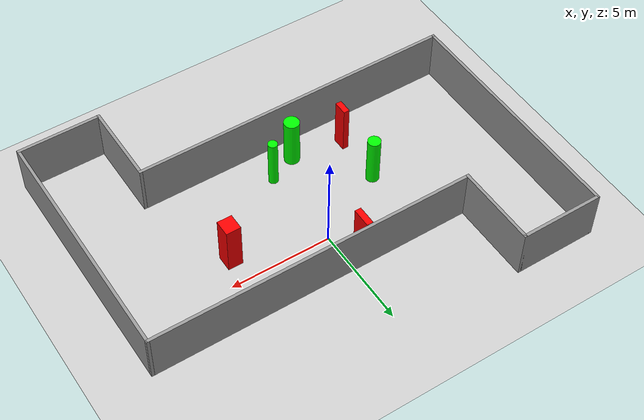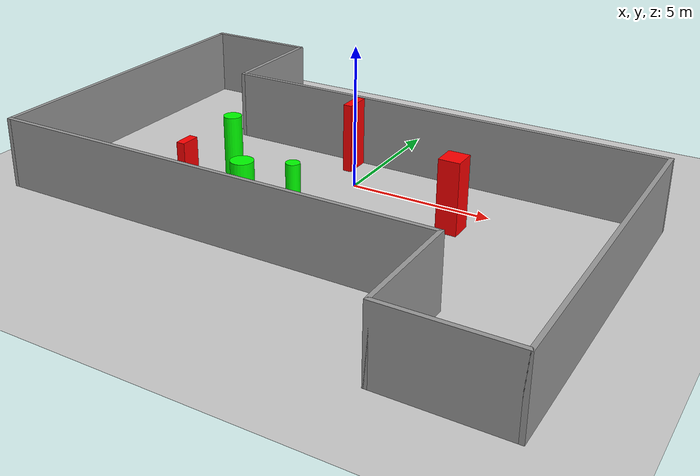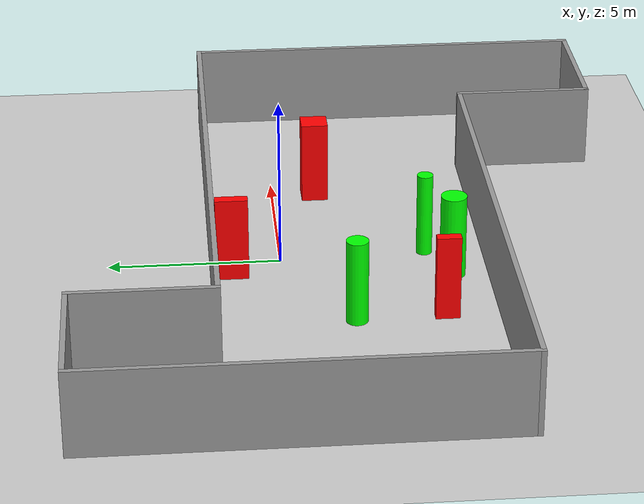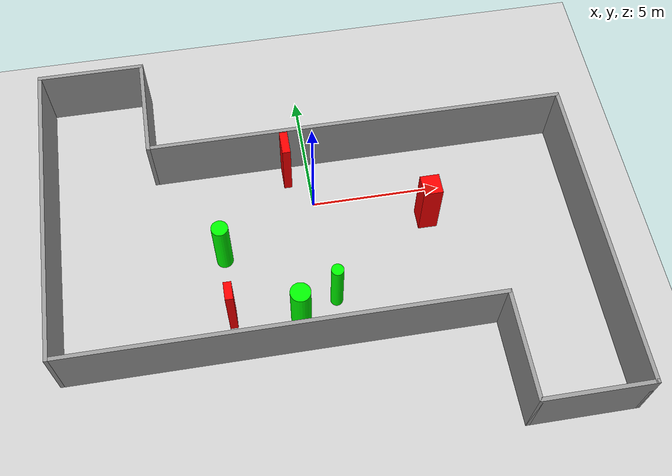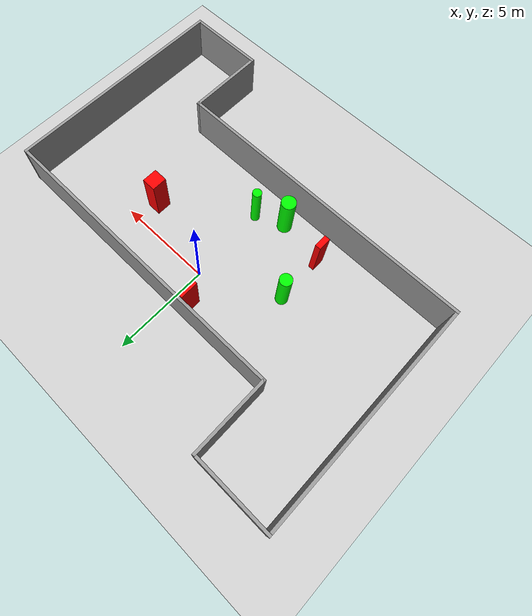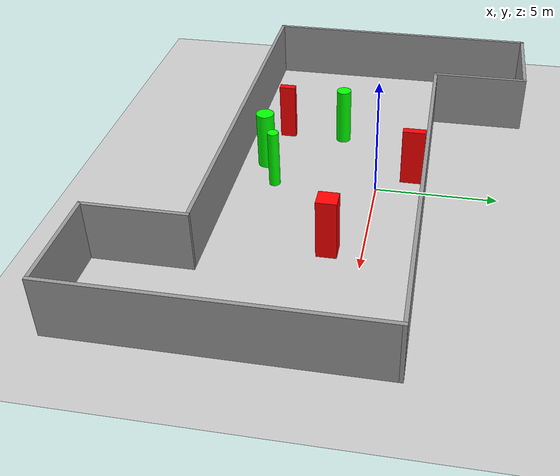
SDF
<sdf version="1.7">
 <world name="default">
  <light name="sun" type="directional">
   <pose>0 0 10 0 -0 0</pose>
   <diffuse>0.8 0.8 0.8 1</diffuse>
   <specular>0.2 0.2 0.2 1</specular>
   <attenuation>
    <range>1000</range>
    <constant>0.9</constant>
    <linear>0.01</linear>
    <quadratic>0.001</quadratic>
   </attenuation>
   <direction>-0.5 0.1 -0.9</direction>
   <spot><inner_angle>0</inner_angle><outer_angle>0</outer_angle><falloff>0</falloff></spot>
  </light>
  <model name="ground_plane">
   <static>1</static>
   <link name="link">
    <collision name="collision">
     <geometry><plane><normal>0 0 1</normal><size>100 100</size></plane></geometry>
     <surface>
      <contact><collide_bitmask>65535</collide_bitmask></contact>
      <friction><ode><mu>100</mu><mu2>50</mu2></ode></friction>
     </surface>
    </collision>
    <visual name="visual">
     <cast_shadows>0</cast_shadows>
     <geometry><plane><normal>0 0 1</normal><size>100 100</size></plane></geometry>
     <material>
      <script><uri>file://media/materials/scripts/gazebo.material</uri><name>Gazebo/Grey</name></script>
     </material>
    </visual>
   </link>
  </model>
  <gravity>0 0 -9.8</gravity>
  <magnetic_field>6e-06 2.3e-05 -4.2e-05</magnetic_field>
  <atmosphere type="adiabatic"/>
  <physics type="ode">
   <max_step_size>0.001</max_step_size>
   <real_time_factor>1</real_time_factor>
   <real_time_update_rate>1000</real_time_update_rate>
  </physics>
  <scene><ambient>0.4 0.4 0.4 1</ambient><background>0.7 0.7 0.7 1</background><shadows>1</shadows></scene>
  <spherical_coordinates>
   <surface_model>EARTH_WGS84</surface_model>
   <latitude_deg>0</latitude_deg>
   <longitude_deg>0</longitude_deg>
   <elevation>0</elevation>
   <heading_deg>0</heading_deg>
  </spherical_coordinates>
  <model name="my_base_walls">
   <link name="Wall_13">
    <collision name="Wall_13_Collision">
     <geometry><box><size>12.15 0.15 2.5</size></box></geometry>
     <pose>0 0 1.25 0 -0 0</pose>
    </collision>
    <visual name="Wall_13_Visual">
     <pose>0 0 1.25 0 -0 0</pose>
     <geometry><box><size>12.15 0.15 2.5</size></box></geometry>
     <material>
      <script><uri>file://media/materials/scripts/gazebo.material</uri><name>Gazebo/Grey</name></script>
      <ambient>1 1 1 1</ambient>
     </material>
     <meta><layer>0</layer></meta>
    </visual>
    <pose>10 -2 0 0 -0 1.5708</pose>
   </link>
   <link name="Wall_15">
    <collision name="Wall_15_Collision">
     <geometry><box><size>16.15 0.15 2.5</size></box></geometry>
     <pose>0 0 1.25 0 -0 0</pose>
    </collision>
    <visual name="Wall_15_Visual">
     <pose>0 0 1.25 0 -0 0</pose>
     <geometry><box><size>16.15 0.15 2.5</size></box></geometry>
     <material>
      <script><uri>file://media/materials/scripts/gazebo.material</uri><name>Gazebo/Grey</name></script>
      <ambient>1 1 1 1</ambient>
     </material>
     <meta><layer>0</layer></meta>
    </visual>
    <pose>2 4 0 0 -0 3.14159</pose>
   </link>
   <link name="Wall_17">
    <collision name="Wall_17_Collision">
     <geometry><box><size>4.15 0.15 2.5</size></box></geometry>
     <pose>0 0 1.25 0 -0 0</pose>
    </collision>
    <visual name="Wall_17_Visual">
     <pose>0 0 1.25 0 -0 0</pose>
     <geometry><box><size>4.15 0.15 2.5</size></box></geometry>
     <material>
      <script><uri>file://media/materials/scripts/gazebo.material</uri><name>Gazebo/Grey</name></script>
      <ambient>1 1 1 1</ambient>
     </material>
     <meta><layer>0</layer></meta>
    </visual>
    <pose>6 -6 0 0 -0 -1.5708</pose>
   </link>
   <link name="Wall_19">
    <collision name="Wall_19_Collision">
     <geometry><box><size>12.15 0.15 2.5</size></box></geometry>
     <pose>0 0 1.25 0 -0 0</pose>
    </collision>
    <visual name="Wall_19_Visual">
     <pose>0 0 1.25 0 -0 0</pose>
     <geometry><box><size>12.15 0.15 2.5</size></box></geometry>
     <material>
      <script><uri>file://media/materials/scripts/gazebo.material</uri><name>Gazebo/Grey</name></script>
      <ambient>1 1 1 1</ambient>
     </material>
     <meta><layer>0</layer></meta>
    </visual>
    <pose>-10 2 0 0 -0 1.5708</pose>
   </link>
   <link name="Wall_21">
    <collision name="Wall_21_Collision">
     <geometry><box><size>4.15 0.15 2.5</size></box></geometry>
     <pose>0 0 1.25 0 -0 0</pose>
    </collision>
    <visual name="Wall_21_Visual">
     <pose>0 0 1.25 0 -0 0</pose>
     <geometry><box><size>4.15 0.15 2.5</size></box></geometry>
     <material>
      <script><uri>file://media/materials/scripts/gazebo.material</uri><name>Gazebo/Grey</name></script>
      <ambient>1 1 1 1</ambient>
     </material>
     <meta><layer>0</layer></meta>
    </visual>
    <pose>-8 8 0 0 -0 0</pose>
   </link>
   <link name="Wall_23">
    <collision name="Wall_23_Collision">
     <geometry><box><size>4.15 0.15 2.5</size></box></geometry>
     <pose>0 0 1.25 0 -0 0</pose>
    </collision>
    <visual name="Wall_23_Visual">
     <pose>0 0 1.25 0 -0 0</pose>
     <geometry><box><size>4.15 0.15 2.5</size></box></geometry>
     <material>
      <script><uri>file://media/materials/scripts/gazebo.material</uri><name>Gazebo/Grey</name></script>
      <ambient>1 1 1 1</ambient>
     </material>
     <meta><layer>0</layer></meta>
    </visual>
    <pose>-6 6 0 0 -0 -1.5708</pose>
   </link>
   <link name="Wall_25">
    <collision name="Wall_25_Collision">
     <geometry><box><size>4.15 0.15 2.5</size></box></geometry>
     <pose>0 0 1.25 0 -0 0</pose>
    </collision>
    <visual name="Wall_25_Visual">
     <pose>0 0 1.25 0 -0 0</pose>
     <geometry><box><size>4.15 0.15 2.5</size></box></geometry>
     <material>
      <script><uri>file://media/materials/scripts/gazebo.material</uri><name>Gazebo/Grey</name></script>
      <ambient>1 1 1 1</ambient>
     </material>
     <meta><layer>0</layer></meta>
    </visual>
    <pose>8 -8 0 0 -0 0</pose>
   </link>
   <link name="Wall_9">
    <collision name="Wall_9_Collision">
     <geometry><box><size>16.15 0.15 2.5</size></box></geometry>
     <pose>0 0 1.25 0 -0 0</pose>
    </collision>
    <visual name="Wall_9_Visual">
     <pose>0 0 1.25 0 -0 0</pose>
     <geometry><box><size>16.15 0.15 2.5</size></box></geometry>
     <material>
      <script><uri>file://media/materials/scripts/gazebo.material</uri><name>Gazebo/Grey</name></script>
      <ambient>1 1 1 1</ambient>
     </material>
     <meta><layer>0</layer></meta>
    </visual>
    <pose>-2 -4 0 0 -0 3.14159</pose>
   </link>
   <static>1</static>
   <pose>-0 -2 0 0 -0 0</pose>
  </model>
  <model name="cylinder1">
   <static>1</static>
   <link name="link">
    <inertial>
     <mass>1</mass>
     <inertia><ixx>0.5</ixx><ixy>0</ixy><ixz>0</ixz><iyy>0.5</iyy><iyz>0</iyz><izz>1</izz></inertia>
    </inertial>
    <collision name="collision">
     <geometry><cylinder><radius>0.31573628328670655</radius><length>2.5</length></cylinder></geometry>
    </collision>
    <visual name="visual">
     <geometry><cylinder><radius>0.31573628328670655</radius><length>2.5</length></cylinder></geometry>
     <material>
      <ambient>0 1 0 1</ambient>
      <diffuse>0 1 0 1</diffuse>
      <specular>0.1 0.1 0.1 1</specular>
      <emissive>0 0 0 0</emissive>
     </material>
    </visual>
   </link>
   <pose>-3.7079381309575807 -1.9061049748790229 1.25 0 0 0</pose>
  </model>
  <model name="cylinder2">
   <static>1</static>
   <link name="link">
    <inertial>
     <mass>1</mass>
     <inertia><ixx>0.5</ixx><ixy>0</ixy><ixz>0</ixz><iyy>0.5</iyy><iyz>0</iyz><izz>1</izz></inertia>
    </inertial>
    <collision name="collision">
     <geometry><cylinder><radius>0.3765996208536455</radius><length>2.5</length></cylinder></geometry>
    </collision>
    <visual name="visual">
     <geometry><cylinder><radius>0.3765996208536455</radius><length>2.5</length></cylinder></geometry>
     <material>
      <ambient>0 1 0 1</ambient>
      <diffuse>0 1 0 1</diffuse>
      <specular>0.1 0.1 0.1 1</specular>
      <emissive>0 0 0 0</emissive>
     </material>
    </visual>
   </link>
   <pose>-1.1980177844269697 -4.895493419442598 1.25 0 0 0</pose>
  </model>
  <model name="cylinder3">
   <static>1</static>
   <link name="link">
    <inertial>
     <mass>1</mass>
     <inertia><ixx>0.5</ixx><ixy>0</ixy><ixz>0</ixz><iyy>0.5</iyy><iyz>0</iyz><izz>1</izz></inertia>
    </inertial>
    <collision name="collision">
     <geometry><cylinder><radius>0.2314405901686768</radius><length>2.5</length></cylinder></geometry>
    </collision>
    <visual name="visual">
     <geometry><cylinder><radius>0.2314405901686768</radius><length>2.5</length></cylinder></geometry>
     <material>
      <ambient>0 1 0 1</ambient>
      <diffuse>0 1 0 1</diffuse>
      <specular>0.1 0.1 0.1 1</specular>
      <emissive>0 0 0 0</emissive>
     </material>
    </visual>
   </link>
   <pose>0.22844511047591531 -4.237860839945406 1.25 0 0 0</pose>
  </model>
  <model name="box1">
   <static>1</static>
   <link name="link">
    <inertial>
     <mass>1</mass>
     <inertia><ixx>0.083</ixx><ixy>0</ixy><ixz>0</ixz><iyy>0.083</iyy><iyz>0</iyz><izz>0.083</izz></inertia>
    </inertial>
    <collision name="collision">
     <geometry><box><size>0.31280414197552686 0.943981072559953 2.5</size></box></geometry>
    </collision>
    <visual name="visual">
     <geometry><box><size>0.31280414197552686 0.943981072559953 2.5</size></box></geometry>
     <material>
      <ambient>1 0 0 1</ambient>
      <diffuse>1 0 0 1</diffuse>
      <specular>0.1 0.1 0.1 1</specular>
      <emissive>0 0 0 0</emissive>
     </material>
    </visual>
    <sensor name="my_contact" type="contact">
     <contact><collision>box_collision</collision><topic>__default_topic__</topic></contact>
    </sensor>
   </link>
   <pose>-0.8507871506487819 1.4327333429025124 1.25 0 0 0</pose>
  </model>
  <model name="box2">
   <static>1</static>
   <link name="link">
    <inertial>
     <mass>1</mass>
     <inertia><ixx>0.083</ixx><ixy>0</ixy><ixz>0</ixz><iyy>0.083</iyy><iyz>0</iyz><izz>0.083</izz></inertia>
    </inertial>
    <collision name="collision">
     <geometry><box><size>0.2948166392124969 0.6878949378553927 2.5</size></box></geometry>
    </collision>
    <visual name="visual">
     <geometry><box><size>0.2948166392124969 0.6878949378553927 2.5</size></box></geometry>
     <material>
      <ambient>1 0 0 1</ambient>
      <diffuse>1 0 0 1</diffuse>
      <specular>0.1 0.1 0.1 1</specular>
      <emissive>0 0 0 0</emissive>
     </material>
    </visual>
    <sensor name="my_contact" type="contact">
     <contact><collision>box_collision</collision><topic>__default_topic__</topic></contact>
    </sensor>
   </link>
   <pose>-3.6801734524438823 -4.433998604713966 1.25 0 0 0</pose>
  </model>
  <model name="box3">
   <static>1</static>
   <link name="link">
    <inertial>
     <mass>1</mass>
     <inertia><ixx>0.083</ixx><ixy>0</ixy><ixz>0</ixz><iyy>0.083</iyy><iyz>0</iyz><izz>0.083</izz></inertia>
    </inertial>
    <collision name="collision">
     <geometry><box><size>0.7270270478981731 0.7961265013286378 2.5</size></box></geometry>
    </collision>
    <visual name="visual">
     <geometry><box><size>0.7270270478981731 0.7961265013286378 2.5</size></box></geometry>
     <material>
      <ambient>1 0 0 1</ambient>
      <diffuse>1 0 0 1</diffuse>
      <specular>0.1 0.1 0.1 1</specular>
      <emissive>0 0 0 0</emissive>
     </material>
    </visual>
    <sensor name="my_contact" type="contact">
     <contact><collision>box_collision</collision><topic>__default_topic__</topic></contact>
    </sensor>
   </link>
   <pose>4.251428686156663 -1.3050355563715055 1.25 0 0 0</pose>
  </model>
 </world>
</sdf>
